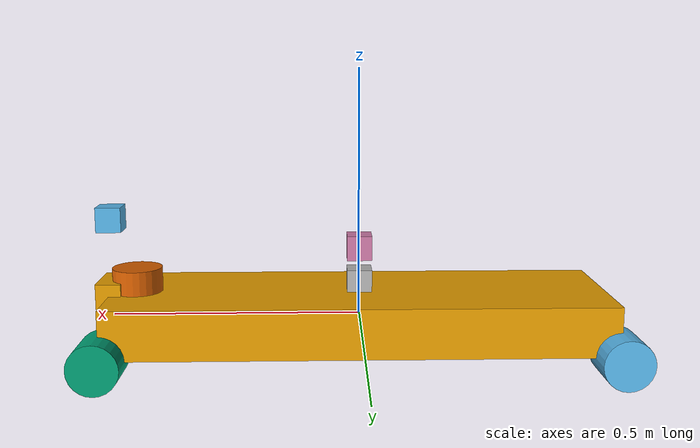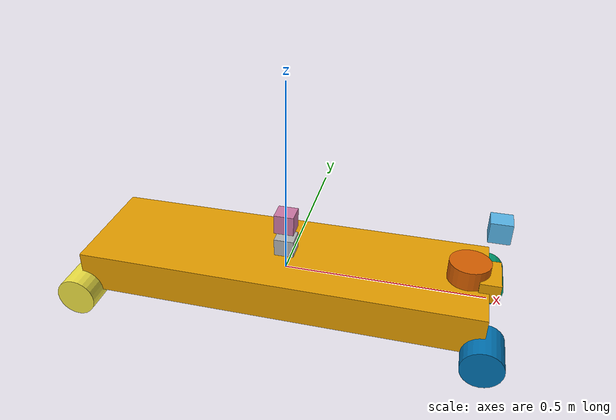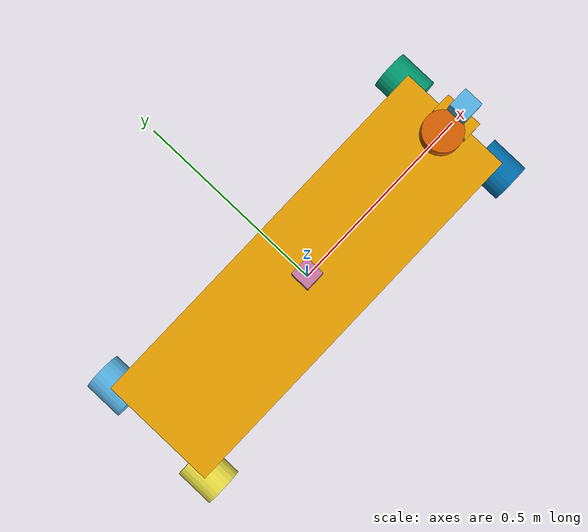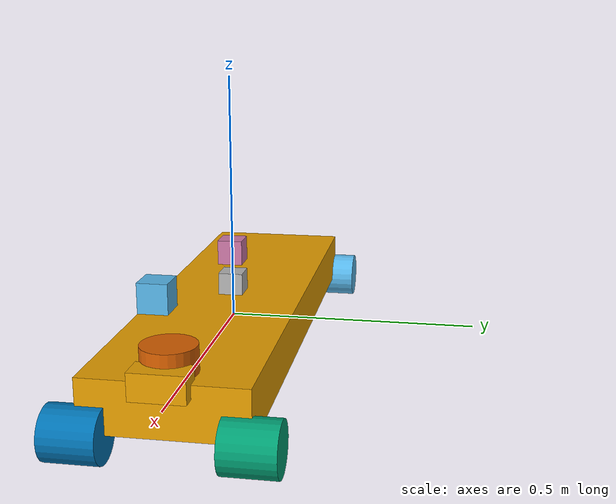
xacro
<?xml version="1.0"?>

<robot name="lil_martian_slave">
    <link name="base_link">

        <visual>
            <geometry>
                <box size="1 0.3 0.1"/>
            </geometry>
        </visual>
        <collision>
            <geometry>
                <box size="1 0.3 0.1"/>
            </geometry>
        </collision>

        <inertial>
            <origin xyz="0.0 0 0" rpy=" 0 0 0"/>
            <mass value="10"/>
            <inertia
            ixx="0.4" ixy="0.0" ixz="0.0"
            iyy="0.4" iyz="0.0"
            izz="0.2"
            />
        </inertial>
    </link>

        <!-- wheels_right -->
        <link name='back_right_caster'>
            <visual>
                <geometry>
                    <cylinder length="0.1" radius="0.05"/>
                </geometry>
            </visual>
            <collision>
                <geometry>
                    <cylinder length="0.1" radius="0.05"/>
                </geometry>
            </collision>
        </link>

        <link name='front_right_caster'>
            <visual>
                <geometry>
                    <cylinder length="0.1" radius="0.05"/>
                </geometry>
            </visual>
            <collision>
                <geometry>
                    <cylinder length="0.1" radius="0.05"/>
                </geometry>
            </collision>
        </link>

        <!-- wheels_left-->
        <link name='back_left_caster'>
            <visual>
                <geometry>
                    <cylinder length="0.1" radius="0.05"/>
                </geometry>
            </visual>
            <collision>
                <geometry>
                    <cylinder length="0.1" radius="0.05"/>
                </geometry>
            </collision>
        </link>

        <link name='front_left_caster'>
            <visual>
                <geometry>
                    <cylinder length="0.1" radius="0.05"/>
                </geometry>
            </visual>
            <collision>
                <geometry>
                    <cylinder length="0.1" radius="0.05"/>
                </geometry>
            </collision>
        </link>

    <!-- Joints for Wheels -->
        <joint name="front_left_joint" type="continuous">
            <parent link="base_link"/>
            <child link="front_left_caster"/>
            <origin xyz="0.5 -0.15 -0.05" rpy="0 1.57079632679 1.57079632679"/>
            <axis xyz="0 1 0"/>
        </joint>

        <joint name="front_right_joint" type="continuous">
            <parent link="base_link"/>
            <child link="front_right_caster"/>
            <origin xyz="0.5 0.15 -0.05" rpy="0 -1.57079632679 -1.57079632679"/>
            <axis xyz="0 1 0"/>
        </joint>

        <joint name="back_left_joint" type="continuous">
            <parent link="base_link"/>
            <child link="back_left_caster"/>
            <origin xyz="-0.5 -0.15 -0.05" rpy="0 1.57079632679 1.57079632679"/>
            <axis xyz="0 1 0"/>
        </joint>

        <joint name="back_right_joint" type="continuous">
            <parent link="base_link"/>
            <child link="back_right_caster"/>
            <origin xyz="-0.5 0.15 -0.05" rpy="0 -1.57079632679 -1.57079632679"/>
            <axis xyz="0 1 0"/>
        </joint>

    <!-- skid-steer-->
    <gazebo>
        <plugin name="skid_steer_controller" filename="libgazebo_ros_skid_steer_drive.so">
            <left_joint>front_left_caster</left_joint>
            <right_joint>front_right_caster</right_joint>
            <left_joint>back_left_caster</left_joint>
            <right_joint>back_right_caster</right_joint>
            <publish_rate>50</publish_rate>
            <wheel_separation>0.3</wheel_separation>
            <wheel_radius>0.05</wheel_radius>
            <command_topic>/cmd_vel</command_topic>
            <odometry_topic>/odom</odometry_topic>
            <odometry_frame>odom</odometry_frame>
            <robot_base_frame>base_link</robot_base_frame>
        </plugin>
    </gazebo>

    <!-- Lidar Sensor -->
    <link name="lidar_link">
        <visual>
            <geometry>
                <cylinder length="0.05" radius="0.05"/>
            </geometry>
        </visual>
        <collision>
            <geometry>
                <cylinder length="0.05" radius="0.05"/>
            </geometry>
        </collision>
    </link>

    <joint name="lidar_joint" type="fixed">
        <parent link="base_link"/>
        <child link="lidar_link"/>
        <origin xyz="0.45 0 0.074"/>
    </joint>

    <gazebo reference="lidar_link">
        <sensor type="ray" name="lidar_sensor">
            <pose>0 0 0 0 0 0</pose>
            <visualize>true</visualize>
            <update_rate>10</update_rate>
            <ray>
                <scan>
                    <horizontal>
                        <samples>720</samples>
                        <resolution>1</resolution>
                        <min_angle>-1.57079632679</min_angle>
                        <max_angle>1.57079632679</max_angle>
                    </horizontal>
                </scan>
                <range>
                    <min>0.1</min>
                    <max>10</max>
                    <resolution>0.01</resolution>
                </range>
            </ray>
            <plugin name="lidar_plugin" filename="libgazebo_ros_ray_sensor.so">
                <robotNamespace>/lil_martian_slave</robotNamespace>
                <topicName>lidar_scan</topicName>
                <frameName>lidar_link</frameName>
                <alwaysOn>true</alwaysOn>
                <updateRate>10.0</updateRate>
            </plugin>
        </sensor>
    </gazebo>

    <!-- GPS Sensor -->
    <link name="gps_link">
        <visual>
            <geometry>
                <box size="0.05 0.05 0.05"/>
            </geometry>
        </visual>
        <collision>
            <geometry>
                <box size="0.05 0.05 0.05"/>
            </geometry>
        </collision>
    </link>

    <joint name="gps_joint" type="fixed">
        <parent link="base_link"/>
        <child link="gps_link"/>
        <origin xyz="0 0 0.14"/>
    </joint>

    <gazebo>
        <plugin name="gps_plugin" filename="libgazebo_ros_gps.so">
            <robotNamespace>/lil_martian_slave</robotNamespace>
            <topicName>gps</topicName>
            <frameName>gps_link</frameName>
            <alwaysOn>true</alwaysOn>
            <updateRate>10.0</updateRate>
        </plugin>
    </gazebo>

    <!-- IMU Sensor -->
    <link name="imu_link">
        <visual>
            <geometry>
                <box size="0.05 0.05 0.05"/>
            </geometry>
        </visual>
        <collision>
            <geometry>
                <box size="0.05 0.05 0.05"/>
            </geometry>
        </collision>
    </link>

    <joint name="imu_joint" type="fixed">
        <parent link="base_link"/>
        <child link="imu_link"/>
        <origin xyz="0 0 0.07"/>
    </joint>

    <gazebo>
        <plugin name="imu_plugin" filename="libgazebo_ros_imu.so">
            <robotNamespace>/lil_martian_slave</robotNamespace>
            <topicName>imu</topicName>
            <frameName>imu_link</frameName>
            <alwaysOn>true</alwaysOn>
            <updateRate>10.0</updateRate>
        </plugin>
    </gazebo>

    <!-- ZED2 Stereo Camera -->
    <link name="zed2_link">
        <visual>
            <geometry>
                <box size="0.05 0.1 0.05"/>
            </geometry>
        </visual>
        <collision>
            <geometry>
                <box size="0.05 0.1 0.05"/>
            </geometry>
        </collision>
    </link>

    <joint name="zed2_joint" type="fixed">
        <parent link="base_link"/>
        <child link="zed2_link"/>
        <origin xyz="0.5 0 0.05"/>
    </joint>

    <gazebo>
        <plugin name="zed2_plugin" filename="libgazebo_ros_openni_kinect.so">
            <robotNamespace>/lil_martian_slave</robotNamespace>
            <topicName>camera/rgb/image_raw</topicName>
            <frameName>zed2_link</frameName>
            <updateRate>30.0</updateRate>
            <camera>
                <horizontal_fov>1.047198</horizontal_fov>
                <image>
                    <width>640</width>
                    <height>480</height>
                    <format>R8G8B8</format>
                </image>
                <clip>
                    <near>0.1</near>
                    <far>100</far>
                </clip>
                <noise>
                    <type>gaussian</type>
                    <mean>0.0</mean>
                    <stddev>0.007</stddev>
                </noise>
            </camera>
            <alwaysOn>true</alwaysOn>
            <updateRate>10.0</updateRate>
        </plugin>
    </gazebo>

    <!-- Additional Camera -->
    <link name="camera_link">
        <visual>
            <geometry>
                <box size="0.05 0.05 0.05"/>
            </geometry>
        </visual>
        <collision>
            <geometry>
                <box size="0.05 0.05 0.05"/>
            </geometry>
        </collision>
    </link>

    <joint name="camera_joint" type="fixed">
        <parent link="base_link"/>
        <child link="camera_link"/>
        <origin xyz="0.5 0 0.2"/>
    </joint>

    <gazebo>
        <plugin name="camera_plugin" filename="libgazebo_ros_camera.so">
            <robotNamespace>/my_robot</robotNamespace>
            <topicName>camera/image_raw</topicName>
            <frameName>camera_link</frameName>
            <updateRate>30.0</updateRate>
            <camera>
                <horizontal_fov>1.047198</horizontal_fov>
                <image>
                    <width>640</width>
                    <height>480</height>
                    <format>R8G8B8</format>
                </image>
                <clip>
                    <near>0.1</near>
                    <far>100</far>
                </clip>
                <noise>
                    <type>gaussian</type>
                    <mean>0.0</mean>
                    <stddev>0.007</stddev>
                </noise>
            </camera>
            <alwaysOn>true</alwaysOn>
            <updateRate>10.0</updateRate>
        </plugin>
    </gazebo>

</robot>
